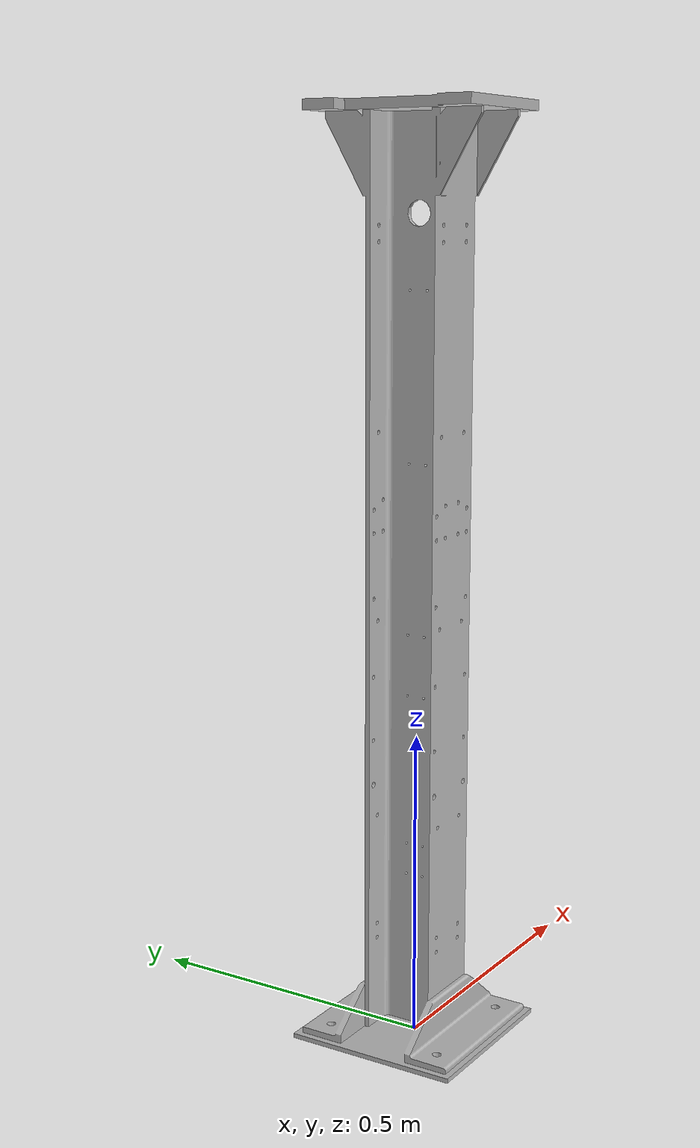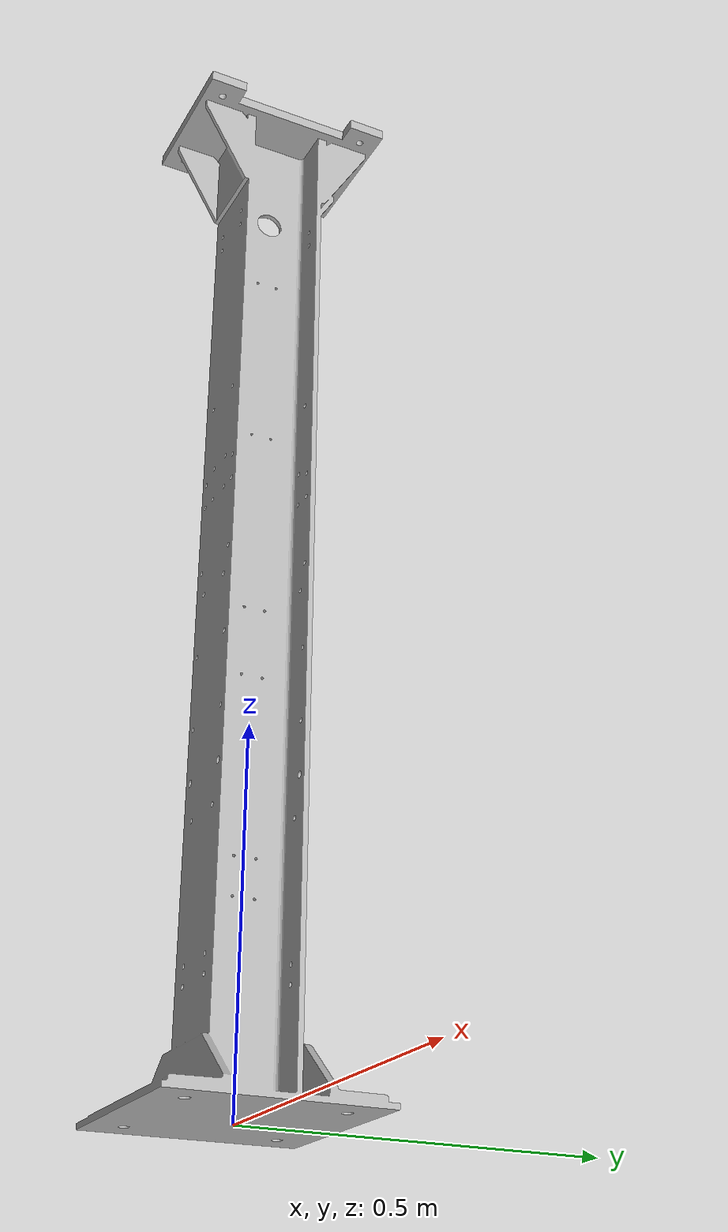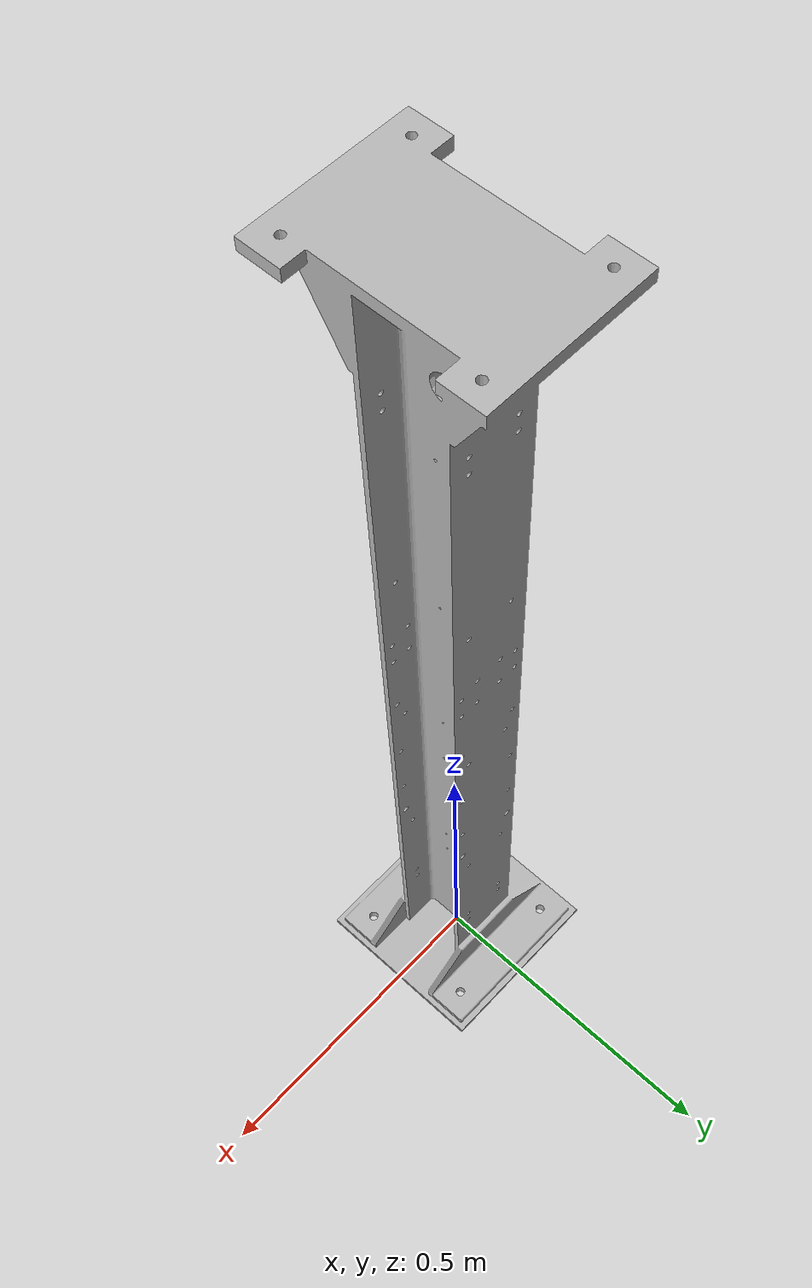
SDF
<?xml version='1.0'?>
<sdf version='1.4'>
  <model name="FGAG2005">
 <static>false</static>
 <link name="mesh_link">
	<inertial>
            <mass>100.0</mass>
 	</inertial>
        <visual name="visual">
        <geometry>
            <mesh><uri>model://FGAG2005/meshes/FGAG2005.stl</uri></mesh>
          </geometry>
        </visual>
        <collision name="collision">
          <geometry>
            <mesh><uri>model://FGAG2005/meshes/FGAG2005.stl</uri></mesh>
          </geometry>
        </collision>
      </link>

      <joint name='anchor' type='fixed'>
        <child>mesh_link</child>
        <parent>world</parent>
      </joint>
  </model>
</sdf>
